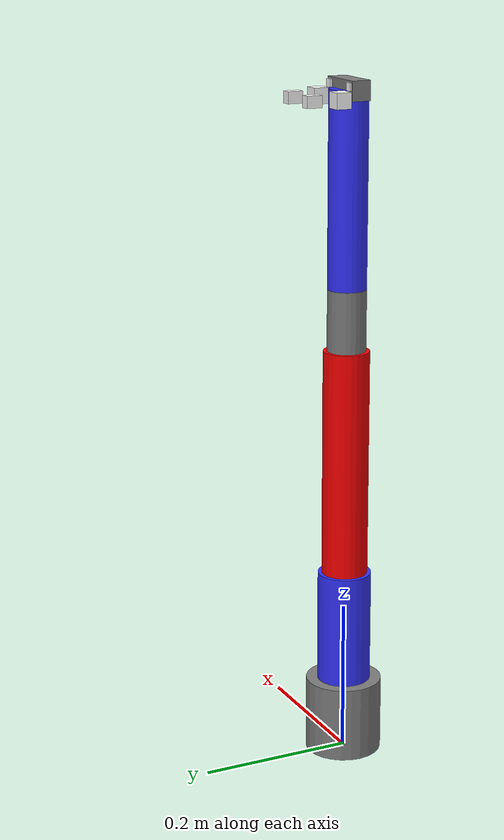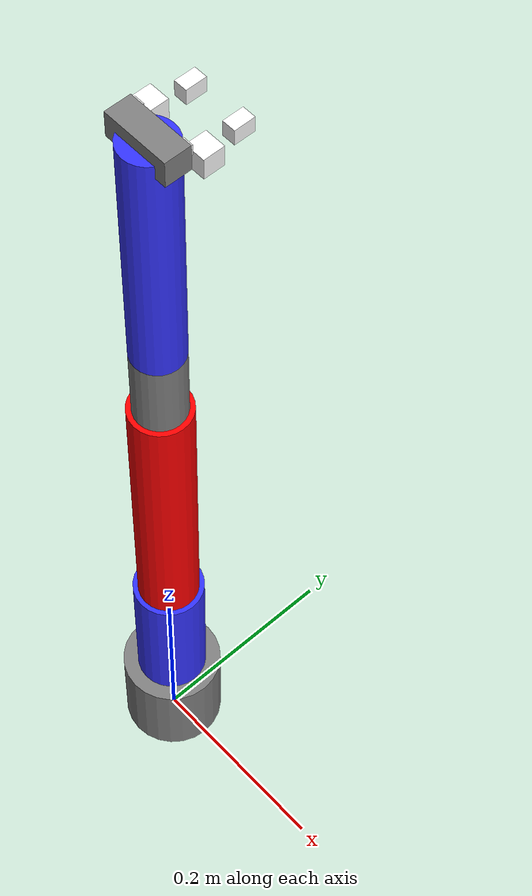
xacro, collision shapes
<?xml version="1.0"?>
<robot xmlns:xacro="http://www.ros.org/wiki/xacro" name="robot_arm">

    <!-- Include inertial macros -->
    <xacro:include filename="$(find robot_arm_simulation)/urdf/inertial_macros.xacro"/>

    <!-- Properties -->
    <xacro:property name="PI" value="3.1415926535897931"/>

    <!-- Arm properties -->
    <xacro:property name="base_height" value="0.1"/>
    <xacro:property name="base_radius" value="0.05"/>
    <xacro:property name="base_mass" value="2.0"/>

    <xacro:property name="shoulder_length" value="0.15"/>
    <xacro:property name="shoulder_radius" value="0.035"/>
    <xacro:property name="shoulder_mass" value="1.5"/>

    <xacro:property name="upper_arm_length" value="0.30"/>
    <xacro:property name="upper_arm_radius" value="0.03"/>
    <xacro:property name="upper_arm_mass" value="1.2"/>

    <xacro:property name="elbow_length" value="0.08"/>
    <xacro:property name="elbow_radius" value="0.025"/>
    <xacro:property name="elbow_mass" value="0.8"/>

    <xacro:property name="forearm_length" value="0.25"/>
    <xacro:property name="forearm_radius" value="0.025"/>
    <xacro:property name="forearm_mass" value="1.0"/>

    <!-- Gripper joint properties -->
    <xacro:property name="joint_effort" value="50"/>
    <xacro:property name="joint_velocity" value="2.0"/>
    <xacro:property name="joint_damping" value="0.1"/>
    <xacro:property name="joint_friction" value="0.05"/>

    <!-- Materials -->
    <material name="blue">
        <color rgba="0.2 0.2 1 1"/>
    </material>
    <material name="red">
        <color rgba="1 0 0 1"/>
    </material>
    <material name="grey">
        <color rgba="0.5 0.5 0.5 1"/>
    </material>
    <material name="orange">
        <color rgba="1 0.5 0 1"/>
    </material>
    <material name="white">
        <color rgba="1 1 1 1"/>
    </material>

    <!-- Gripper link inertial macro -->
    <xacro:macro name="gripper_link_inertial">
        <inertial>
            <origin xyz="0.0 0.0 0.0" rpy="0 0 0"/>
            <mass value="0.01"/>
            <inertia
                ixx="0.000001" ixy="0.0" ixz="0.0"
                iyy="0.000001" iyz="0.0"
                izz="0.000001"/>
        </inertial>
    </xacro:macro>

    <!-- World link -->
    <link name="world"/>

    <!-- Base link -->
    <joint name="fixed" type="fixed">
        <parent link="world"/>
        <child link="base_link"/>
        <origin xyz="0 0 0" rpy="0 0 0"/>
    </joint>

    <link name="base_link">
        <visual>
            <origin xyz="0 0 ${base_height/2}" rpy="0 0 0"/>
            <geometry>
                <cylinder radius="${base_radius}" length="${base_height}"/>
            </geometry>
            <material name="grey"/>
        </visual>
        <collision>
            <origin xyz="0 0 ${base_height/2}" rpy="0 0 0"/>
            <geometry>
                <cylinder radius="${base_radius}" length="${base_height}"/>
            </geometry>
        </collision>
        <xacro:inertial_cylinder mass="${base_mass}" length="${base_height}" radius="${base_radius}">
            <origin xyz="0 0 ${base_height/2}" rpy="0 0 0"/>
        </xacro:inertial_cylinder>
    </link>

    <!-- Shoulder joint and link -->
    <joint name="shoulder_joint" type="revolute">
        <parent link="base_link"/>
        <child link="shoulder_link"/>
        <origin xyz="0 0 ${base_height}" rpy="0 0 0"/>
        <axis xyz="0 0 1"/>
        <limit lower="-${PI}" upper="${PI}" effort="300" velocity="1.0"/>
        <dynamics damping="0.5" friction="0.1"/>
    </joint>

    <link name="shoulder_link">
        <visual>
            <origin xyz="0 0 ${shoulder_length/2}" rpy="0 0 0"/>
            <geometry>
                <cylinder radius="${shoulder_radius}" length="${shoulder_length}"/>
            </geometry>
            <material name="blue"/>
        </visual>
        <collision>
            <origin xyz="0 0 ${shoulder_length/2}" rpy="0 0 0"/>
            <geometry>
                <cylinder radius="${shoulder_radius}" length="${shoulder_length}"/>
            </geometry>
        </collision>
        <xacro:inertial_cylinder mass="${shoulder_mass}" length="${shoulder_length}" radius="${shoulder_radius}">
            <origin xyz="0 0 ${shoulder_length/2}" rpy="0 0 0"/>
        </xacro:inertial_cylinder>
    </link>

    <!-- Upper arm joint and link -->
    <joint name="upper_arm_joint" type="revolute">
        <parent link="shoulder_link"/>
        <child link="upper_arm_link"/>
        <origin xyz="0 0 ${shoulder_length}" rpy="0 0 0"/>
        <axis xyz="0 1 0"/>
        <limit lower="-${PI/2}" upper="${PI/2}" effort="300" velocity="1.0"/>
        <dynamics damping="0.5" friction="0.1"/>
    </joint>

    <link name="upper_arm_link">
        <visual>
            <origin xyz="0 0 ${upper_arm_length/2}" rpy="0 0 0"/>
            <geometry>
                <cylinder radius="${upper_arm_radius}" length="${upper_arm_length}"/>
            </geometry>
            <material name="red"/>
        </visual>
        <collision>
            <origin xyz="0 0 ${upper_arm_length/2}" rpy="0 0 0"/>
            <geometry>
                <cylinder radius="${upper_arm_radius}" length="${upper_arm_length}"/>
            </geometry>
        </collision>
        <xacro:inertial_cylinder mass="${upper_arm_mass}" length="${upper_arm_length}" radius="${upper_arm_radius}">
            <origin xyz="0 0 ${upper_arm_length/2}" rpy="0 0 0"/>
        </xacro:inertial_cylinder>
    </link>

    <!-- Elbow joint and link -->
    <joint name="elbow_joint" type="revolute">
        <parent link="upper_arm_link"/>
        <child link="elbow_link"/>
        <origin xyz="0 0 ${upper_arm_length}" rpy="0 0 0"/>
        <axis xyz="0 1 0"/>
        <limit lower="-${PI}" upper="${PI}" effort="300" velocity="1.0"/>
        <dynamics damping="0.3" friction="0.1"/>
    </joint>

    <link name="elbow_link">
        <visual>
            <origin xyz="0 0 ${elbow_length/2}" rpy="0 0 0"/>
            <geometry>
                <cylinder radius="${elbow_radius}" length="${elbow_length}"/>
            </geometry>
            <material name="grey"/>
        </visual>
        <collision>
            <origin xyz="0 0 ${elbow_length/2}" rpy="0 0 0"/>
            <geometry>
                <cylinder radius="${elbow_radius}" length="${elbow_length}"/>
            </geometry>
        </collision>
        <xacro:inertial_cylinder mass="${elbow_mass}" length="${elbow_length}" radius="${elbow_radius}">
            <origin xyz="0 0 ${elbow_length/2}" rpy="0 0 0"/>
        </xacro:inertial_cylinder>
    </link>

    <!-- Forearm joint and link -->
    <joint name="forearm_joint" type="revolute">
        <parent link="elbow_link"/>
        <child link="forearm_link"/>
        <origin xyz="0 0 ${elbow_length}" rpy="0 0 0"/>
        <axis xyz="0 1 0"/>
        <limit lower="-${PI/2}" upper="${PI/2}" effort="300" velocity="1.0"/>
        <dynamics damping="0.3" friction="0.1"/>
    </joint>

    <link name="forearm_link">
        <visual>
            <origin xyz="0 0 ${forearm_length/2}" rpy="0 0 0"/>
            <geometry>
                <cylinder radius="${forearm_radius}" length="${forearm_length}"/>
            </geometry>
            <material name="blue"/>
        </visual>
        <collision>
            <origin xyz="0 0 ${forearm_length/2}" rpy="0 0 0"/>
            <geometry>
                <cylinder radius="${forearm_radius}" length="${forearm_length}"/>
            </geometry>
        </collision>
        <xacro:inertial_cylinder mass="${forearm_mass}" length="${forearm_length}" radius="${forearm_radius}">
            <origin xyz="0 0 ${forearm_length/2}" rpy="0 0 0"/>
        </xacro:inertial_cylinder>
    </link>

    <!-- MACRO DU GRIPPER ADAPTATIF -->
    <xacro:macro name="adaptive_gripper" params="parent prefix *origin">
        <!-- Joint d'attachement au parent -->
        <joint name="${prefix}gripper_attachment" type="fixed">
            <parent link="${parent}"/>
            <child link="${prefix}gripper_base"/>
            <xacro:insert_block name="origin"/>
        </joint>

        <!-- Base du gripper -->
        <link name="${prefix}gripper_base">
            <inertial>
                <origin xyz="0.0 0 0.0" rpy="0 0 0"/>
                <mass value="0.07"/>
                <inertia
                    ixx="0.000010725" ixy="0.0" ixz="0.0"
                    iyy="0.000014392" iyz="0.0"
                    izz="0.000018517"/>
            </inertial>
            <visual>
                <geometry>
                    <mesh filename="file://$(find robot_arm_simulation)/meshes/gripper_base.dae"/>
                </geometry>
                <origin xyz="0 0.0 -0.013" rpy="0 0 0"/>
                <material name="grey"/>
            </visual>
            <collision>
                <geometry>
                    <box size="0.065 0.025 0.025"/>
                </geometry>
                <origin xyz="0.0 0.0 0.0" rpy="0 0 0"/>
            </collision>
        </link>

        <!-- Doigt gauche 1 -->
        <link name="${prefix}gripper_left1">
            <xacro:gripper_link_inertial/>
            <visual>
                <geometry>
                    <mesh filename="file://$(find robot_arm_simulation)/meshes/gripper_left1.dae"/>
                </geometry>
                <origin xyz="0.039 -0.0133 -0.012" rpy="0 0 0"/>
                <material name="white"/>
            </visual>
            <collision>
                <geometry>
                    <box size="0.013 0.02 0.015"/>
                </geometry>
                <origin xyz="0.013 0.042 -0.010" rpy="0 0 0"/>
            </collision>
        </link>

        <!-- Doigt gauche 2 -->
        <link name="${prefix}gripper_left2">
            <xacro:gripper_link_inertial/>
            <visual>
                <geometry>
                    <mesh filename="file://$(find robot_arm_simulation)/meshes/gripper_left2.dae"/>
                </geometry>
                <origin xyz="0.005 -0.0195 -0.012" rpy="0 0 0"/>
                <material name="white"/>
            </visual>
            <collision>
                <geometry>
                    <box size="0.02 0.02 0.02"/>
                </geometry>
                <origin xyz="-0.025 0.0 -0.010" rpy="0 0 0"/>
            </collision>
        </link>

        <!-- Doigt gauche 3 -->
        <link name="${prefix}gripper_left3">
            <xacro:gripper_link_inertial/>
            <visual>
                <geometry>
                    <mesh filename="file://$(find robot_arm_simulation)/meshes/gripper_left3.dae"/>
                </geometry>
                <origin xyz="0.012 0.0025 -0.012" rpy="0 0 0"/>
                <material name="white"/>
            </visual>
            <collision>
                <geometry>
                    <box size="0.01 0.01 0.01"/>
                </geometry>
                <origin xyz="-0.014 0.005 0.005" rpy="0 0 0"/>
            </collision>
        </link>

        <!-- Doigt droit 1 -->
        <link name="${prefix}gripper_right1">
            <xacro:gripper_link_inertial/>
            <visual>
                <geometry>
                    <mesh filename="file://$(find robot_arm_simulation)/meshes/gripper_right1.dae"/>
                </geometry>
                <origin xyz="-0.039 -0.0133 -0.012" rpy="0 0 0"/>
                <material name="white"/>
            </visual>
            <collision>
                <geometry>
                    <box size="0.013 0.02 0.015"/>
                </geometry>
                <origin xyz="-0.013 0.042 -0.010" rpy="0 0 0"/>
            </collision>
        </link>

        <!-- Doigt droit 2 -->
        <link name="${prefix}gripper_right2">
            <xacro:gripper_link_inertial/>
            <visual>
                <geometry>
                    <mesh filename="file://$(find robot_arm_simulation)/meshes/gripper_right2.dae"/>
                </geometry>
                <origin xyz="-0.005 -0.0195 -0.012" rpy="0 0 0"/>
                <material name="white"/>
            </visual>
            <collision>
                <geometry>
                    <box size="0.02 0.02 0.02"/>
                </geometry>
                <origin xyz="0.025 0.0 -0.010" rpy="0 0 0"/>
            </collision>
        </link>

        <!-- Doigt droit 3 -->
        <link name="${prefix}gripper_right3">
            <xacro:gripper_link_inertial/>
            <visual>
                <geometry>
                    <mesh filename="file://$(find robot_arm_simulation)/meshes/gripper_right3.dae"/>
                </geometry>
                <origin xyz="-0.012 0.0025 -0.012" rpy="0 0 0"/>
                <material name="white"/>
            </visual>
            <collision>
                <geometry>
                    <box size="0.01 0.01 0.01"/>
                </geometry>
                <origin xyz="0.014 0.005 0.005" rpy="0 0 0"/>
            </collision>
        </link>

        <!-- JOINTS DU GRIPPER -->

        <!-- Joint contrôleur principal -->
        <joint name="${prefix}gripper_controller" type="revolute">
            <axis xyz="0 0 1"/>
            <limit effort="${joint_effort}" lower="-0.7" upper="0.15" velocity="${joint_velocity}"/>
            <parent link="${prefix}gripper_base"/>
            <child link="${prefix}gripper_left3"/>
            <origin xyz="-0.012 0.005 0" rpy="0 0 0"/>
            <dynamics damping="${joint_damping}" friction="${joint_friction}"/>
        </joint>

        <!-- Joint base vers doigt gauche 2 -->
        <joint name="${prefix}gripper_base_to_left2" type="revolute">
            <axis xyz="0 0 1"/>
            <limit effort="${joint_effort}" lower="-0.8" upper="0.5" velocity="${joint_velocity}"/>
            <parent link="${prefix}gripper_base"/>
            <child link="${prefix}gripper_left2"/>
            <origin xyz="-0.005 0.027 0" rpy="0 0 0"/>
            <mimic joint="${prefix}gripper_controller" multiplier="1.0" offset="0"/>
            <dynamics damping="${joint_damping}" friction="${joint_friction}"/>
        </joint>

        <!-- Joint doigt gauche 3 vers doigt gauche 1 -->
        <joint name="${prefix}gripper_left3_to_left1" type="revolute">
            <axis xyz="0 0 1"/>
            <limit effort="${joint_effort}" lower="-0.5" upper="0.5" velocity="${joint_velocity}"/>
            <parent link="${prefix}gripper_left3"/>
            <child link="${prefix}gripper_left1"/>
            <origin xyz="-0.027 0.016 0" rpy="0 0 0"/>
            <mimic joint="${prefix}gripper_controller" multiplier="-1.0" offset="0"/>
            <dynamics damping="${joint_damping}" friction="${joint_friction}"/>
        </joint>

        <!-- Joint base vers doigt droit 3 -->
        <joint name="${prefix}gripper_base_to_right3" type="revolute">
            <axis xyz="0 0 1"/>
            <limit effort="${joint_effort}" lower="-0.15" upper="0.7" velocity="${joint_velocity}"/>
            <parent link="${prefix}gripper_base"/>
            <child link="${prefix}gripper_right3"/>
            <origin xyz="0.012 0.005 0" rpy="0 0 0"/>
            <mimic joint="${prefix}gripper_controller" multiplier="-1.0" offset="0"/>
            <dynamics damping="${joint_damping}" friction="${joint_friction}"/>
        </joint>

        <!-- Joint base vers doigt droit 2 -->
        <joint name="${prefix}gripper_base_to_right2" type="revolute">
            <axis xyz="0 0 1"/>
            <limit effort="${joint_effort}" lower="-0.5" upper="0.8" velocity="${joint_velocity}"/>
            <parent link="${prefix}gripper_base"/>
            <child link="${prefix}gripper_right2"/>
            <origin xyz="0.005 0.027 0" rpy="0 0 0"/>
            <mimic joint="${prefix}gripper_controller" multiplier="-1.0" offset="0"/>
            <dynamics damping="${joint_damping}" friction="${joint_friction}"/>
        </joint>

        <!-- Joint doigt droit 3 vers doigt droit 1 -->
        <joint name="${prefix}gripper_right3_to_right1" type="revolute">
            <axis xyz="0 0 1"/>
            <limit effort="${joint_effort}" lower="-0.5" upper="0.5" velocity="${joint_velocity}"/>
            <parent link="${prefix}gripper_right3"/>
            <child link="${prefix}gripper_right1"/>
            <origin xyz="0.027 0.016 0" rpy="0 0 0"/>
            <mimic joint="${prefix}gripper_controller" multiplier="1.0" offset="0"/>
            <dynamics damping="${joint_damping}" friction="${joint_friction}"/>
        </joint>

        <gazebo reference="${prefix}gripper_base">
            <visual>
                <material>
                    <ambient>0.5 0.5 0.5 1</ambient>
                    <diffuse>0.5 0.5 0.5 1</diffuse>
                    <specular>0.5 0.5 0.5 1</specular>
                </material>
            </visual>
        </gazebo>
    </xacro:macro>

    <!-- INSTANCIATION DU GRIPPER ADAPTATIF - Attaché au forearm_link -->
    <xacro:adaptive_gripper parent="forearm_link" prefix="">
        <origin xyz="0 0 ${forearm_length}" rpy="0 0 0"/>
    </xacro:adaptive_gripper>

    <!-- ROS2 Control -->
    <ros2_control name="RobotSystem" type="system">
        <hardware>
            <plugin>gazebo_ros2_control/GazeboSystem</plugin>
        </hardware>

        <joint name="shoulder_joint">
            <command_interface name="position">
                <param name="min">-3.14159</param>
                <param name="max">3.14159</param>
            </command_interface>
            <state_interface name="position"/>
            <state_interface name="velocity"/>
        </joint>

        <joint name="upper_arm_joint">
            <command_interface name="position">
                <param name="min">-1.5708</param>
                <param name="max">1.5708</param>
            </command_interface>
            <state_interface name="position"/>
            <state_interface name="velocity"/>
        </joint>

        <joint name="elbow_joint">
            <command_interface name="position">
                <param name="min">-3.14159</param>
                <param name="max">3.14159</param>
            </command_interface>
            <state_interface name="position"/>
            <state_interface name="velocity"/>
        </joint>

        <joint name="forearm_joint">
            <command_interface name="position">
                <param name="min">-1.5708</param>
                <param name="max">1.5708</param>
            </command_interface>
            <state_interface name="position"/>
            <state_interface name="velocity"/>
        </joint>

        <!-- Contrôle du gripper -->
        <joint name="gripper_controller">
            <command_interface name="position">
                <param name="min">-0.7</param>
                <param name="max">0.15</param>
            </command_interface>
            <state_interface name="position"/>
            <state_interface name="velocity"/>
        </joint>
    </ros2_control>

    <!-- Gazebo plugin for ros2_control -->
    <gazebo>
        <plugin filename="libgazebo_ros2_control.so" name="gazebo_ros2_control">
            <parameters>$(find robot_arm_simulation)/config/arm_controllers.yaml</parameters>
        </plugin>
    </gazebo>

    <!-- Gazebo materials -->
    <gazebo reference="base_link">
        <material>Gazebo/Grey</material>
    </gazebo>

    <gazebo reference="shoulder_link">
        <material>Gazebo/Blue</material>
    </gazebo>

    <gazebo reference="upper_arm_link">
        <material>Gazebo/Red</material>
    </gazebo>

    <gazebo reference="elbow_link">
        <material>Gazebo/Grey</material>
    </gazebo>

    <gazebo reference="forearm_link">
        <material>Gazebo/Blue</material>
    </gazebo>

    <!-- Gazebo materials pour le gripper -->
    <gazebo reference="gripper_base">
        <material>Gazebo/Grey</material>
    </gazebo>

    <gazebo reference="gripper_left1">
        <material>Gazebo/White</material>
    </gazebo>

    <gazebo reference="gripper_left2">
        <material>Gazebo/White</material>
    </gazebo>

    <gazebo reference="gripper_left3">
        <material>Gazebo/White</material>
    </gazebo>

    <gazebo reference="gripper_right1">
        <material>Gazebo/White</material>
    </gazebo>

    <gazebo reference="gripper_right2">
        <material>Gazebo/White</material>
    </gazebo>

    <gazebo reference="gripper_right3">
        <material>Gazebo/White</material>
    </gazebo>

</robot>

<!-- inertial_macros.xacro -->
<robot xmlns:xacro="http://www.ros.org/wiki/xacro">

    <!-- Inertial macro for a box -->
    <xacro:macro name="inertial_box" params="mass x y z *origin">
        <inertial>
            <xacro:insert_block name="origin"/>
            <mass value="${mass}" />
            <inertia ixx="${(1/12) * mass * (y*y+z*z)}" ixy="0.0" ixz="0.0"
                     iyy="${(1/12) * mass * (x*x+z*z)}" iyz="0.0"
                     izz="${(1/12) * mass * (x*x+y*y)}" />
        </inertial>
    </xacro:macro>

    <!-- Inertial macro for a cylinder -->
    <xacro:macro name="inertial_cylinder" params="mass length radius *origin">
        <inertial>
            <xacro:insert_block name="origin"/>
            <mass value="${mass}" />
            <inertia ixx="${(1/12) * mass * (3*radius*radius + length*length)}" ixy="0.0" ixz="0.0"
                     iyy="${(1/12) * mass * (3*radius*radius + length*length)}" iyz="0.0"
                     izz="${(1/2) * mass * (radius*radius)}" />
        </inertial>
    </xacro:macro>

    <!-- Inertial macro for a sphere -->
    <xacro:macro name="inertial_sphere" params="mass radius *origin">
        <inertial>
            <xacro:insert_block name="origin"/>
            <mass value="${mass}" />
            <inertia ixx="${(2/5) * mass * (radius*radius)}" ixy="0.0" ixz="0.0"
                     iyy="${(2/5) * mass * (radius*radius)}" iyz="0.0"
                     izz="${(2/5) * mass * (radius*radius)}" />
        </inertial>
    </xacro:macro>

</robot>
